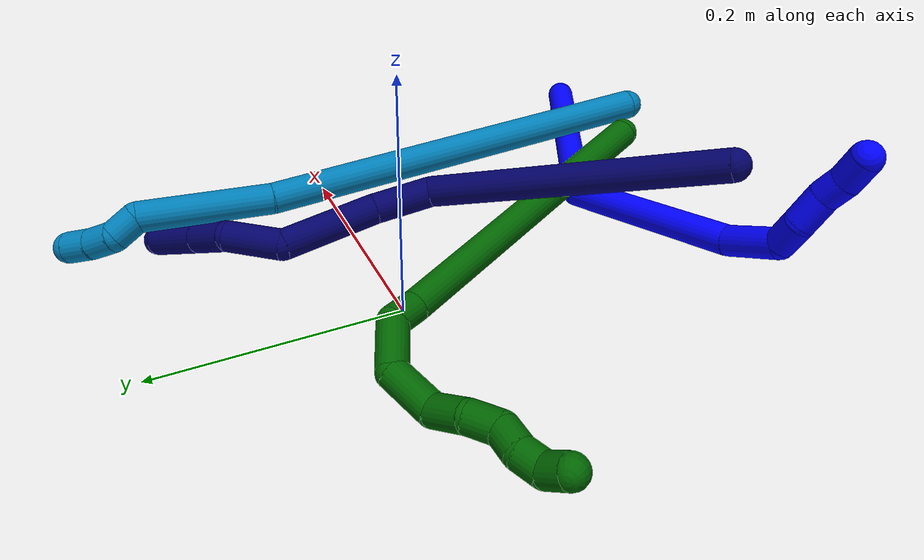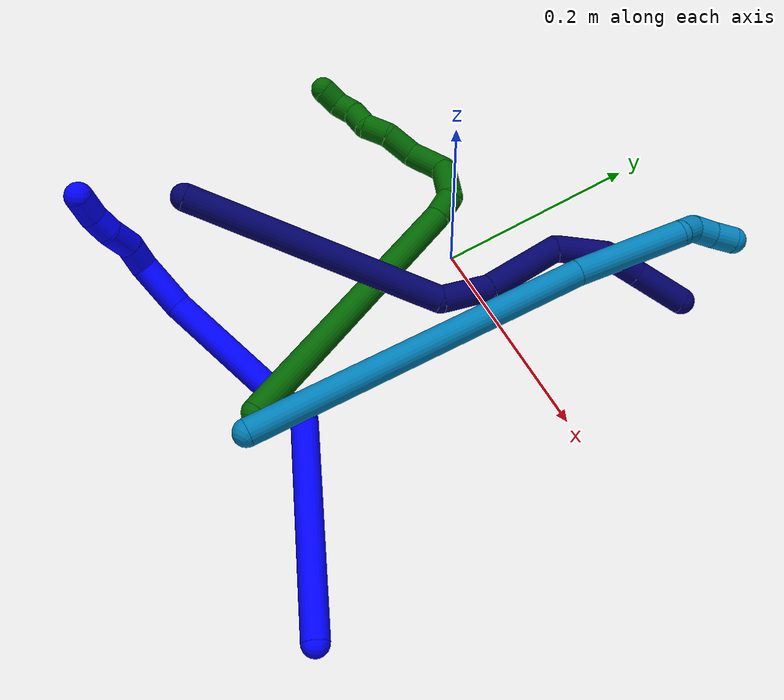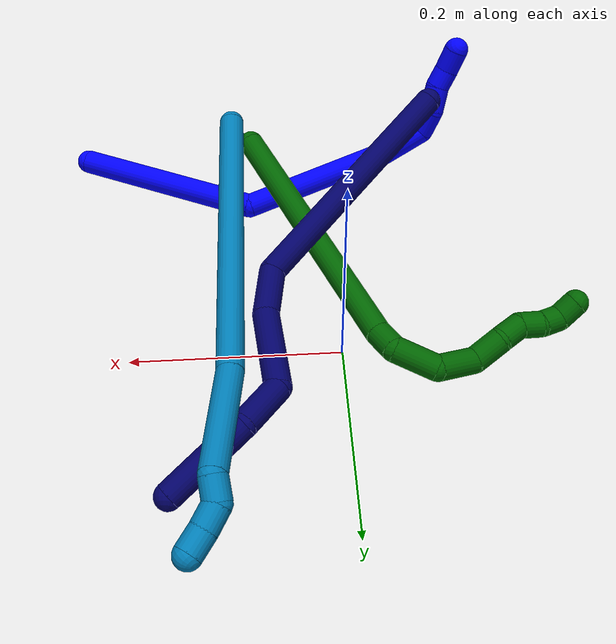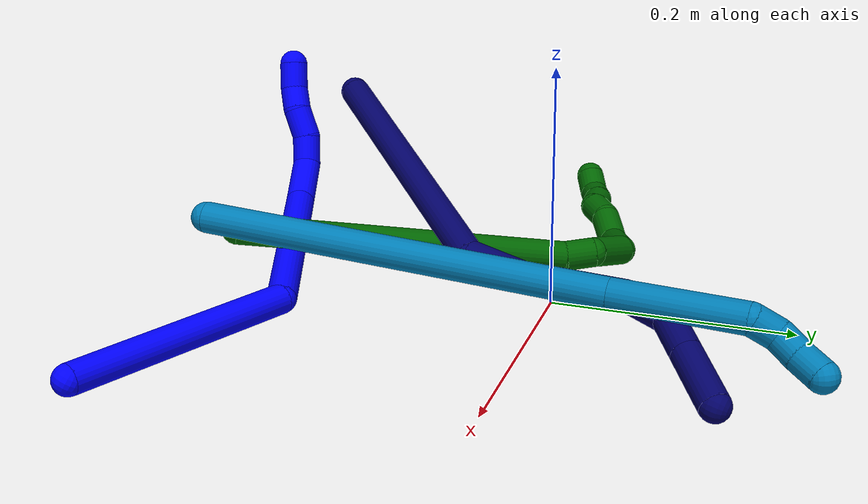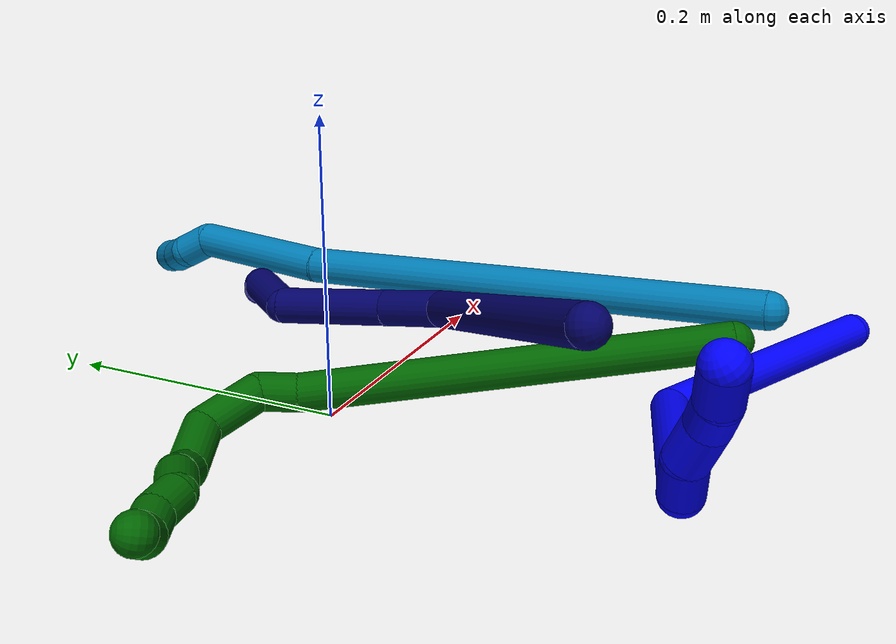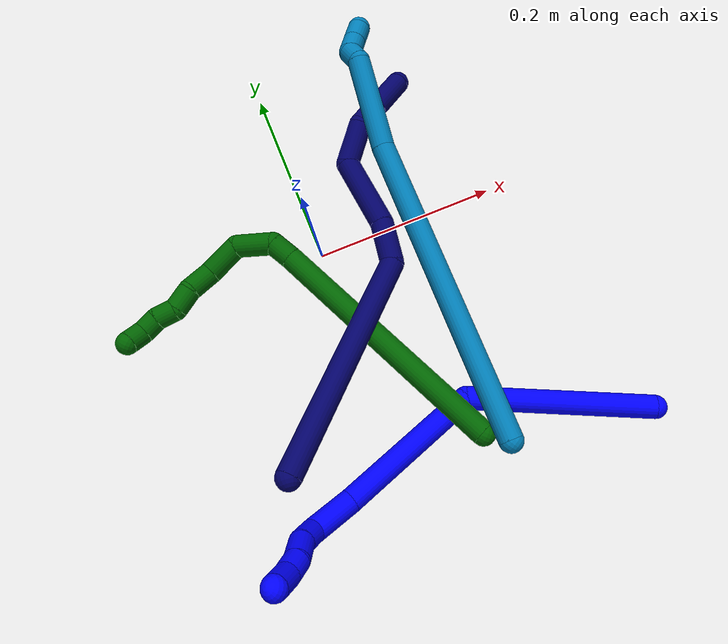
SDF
<sdf version="1.7">
 <world name="default">
  <model name="photoneo_s_sensor">
   <static>1</static>
   <pose>0 0 2 1.57079 1.57079 3.14159</pose>
   <link name="link">
    <inertial><mass>0.1</mass></inertial>
    <sensor name="sensor" type="depth">
     <update_rate>30</update_rate>
     <camera>
      <horizontal_fov>1.22</horizontal_fov>
      <image><width>1920</width><height>1200</height><format>B8G8R8</format></image>
      <clip><near>0.1</near><far>4</far></clip>
      <depth_camera><output>points</output></depth_camera>
     </camera>
     <plugin name="camera_plugin" filename="libgazebo_ros_depth_camera.so">
      <baseline>0.2</baseline>
      <alwaysOn>1</alwaysOn>
      <updateRate>0.0</updateRate>
      <cameraName>camera_ir</cameraName>
      <imageTopicName>/camera/color/image_raw</imageTopicName>
      <cameraInfoTopicName>/camera/color/camera_info</cameraInfoTopicName>
      <depthImageTopicName>/camera/depth/image_raw</depthImageTopicName>
      <depthImageCameraInfoTopicName>/camera/depth/camera_info</depthImageCameraInfoTopicName>
      <pointCloudTopicName>/camera/depth/points</pointCloudTopicName>
      <frameName>fr_optical</frameName>
      <pointCloudCutoff>0.1</pointCloudCutoff>
      <pointCloudCutoffMax>2.0</pointCloudCutoffMax>
      <distortionK1>0</distortionK1>
      <distortionK2>0</distortionK2>
      <distortionK3>0</distortionK3>
      <distortionT1>0</distortionT1>
      <distortionT2>0</distortionT2>
      <CxPrime>0</CxPrime>
      <Cx>0</Cx>
      <Cy>0</Cy>
      <focalLength>0</focalLength>
      <hackBaseline>0</hackBaseline>
     </plugin>
    </sensor>
   </link>
  </model>
  <model name="bin">
   <static>1</static>
   <link name="bottom">
    <collision name="collision-bottom">
     <pose>0 0 -0.01 0 -0 0</pose>
     <geometry><box><size>0.8 0.6 0.02</size></box></geometry>
     <surface>
      <friction><ode><mu>100</mu><mu2>100</mu2></ode></friction>
      <contact><collide_bitmask>65535</collide_bitmask></contact>
     </surface>
    </collision>
   </link>
   <link name="west_wall">
    <collision name="collision-west_wall">
     <pose>-0.41 0 0.1 0 -0 0</pose>
     <geometry><box><size>0.02 0.6 0.2</size></box></geometry>
     <surface>
      <friction><ode><mu>100</mu><mu2>100</mu2></ode></friction>
      <contact><collide_bitmask>65535</collide_bitmask></contact>
     </surface>
    </collision>
   </link>
   <link name="east_wall">
    <collision name="collision-east_wall">
     <pose>0.41 0 0.1 0 -0 0</pose>
     <geometry><box><size>0.02 0.6 0.2</size></box></geometry>
     <surface>
      <friction><ode><mu>100</mu><mu2>100</mu2></ode></friction>
      <contact><collide_bitmask>65535</collide_bitmask></contact>
     </surface>
    </collision>
   </link>
   <link name="south_wall">
    <collision name="collision-south_wall">
     <pose>0 -0.31 0.1 0 -0 0</pose>
     <geometry><box><size>0.8 0.02 0.2</size></box></geometry>
     <surface>
      <friction><ode><mu>100</mu><mu2>100</mu2></ode></friction>
      <contact><collide_bitmask>65535</collide_bitmask></contact>
     </surface>
    </collision>
   </link>
   <link name="north_wall">
    <collision name="collision-north_wall">
     <pose>0 0.31 0.1 0 -0 0</pose>
     <geometry><box><size>0.8 0.02 0.2</size></box></geometry>
     <surface>
      <friction><ode><mu>100</mu><mu2>100</mu2></ode></friction>
      <contact><collide_bitmask>65535</collide_bitmask></contact>
     </surface>
    </collision>
   </link>
  </model>
  <model name="1">
   <static>0</static>
   <link name="1">
    <collision name="collision-cylinder-e_1_1_4">
     <pose>-0.064072 -0.057034 -0.048893 2.27949 -0.706175 -1.35112</pose>
     <geometry><cylinder><radius>0.0125</radius><length>0.197469</length></cylinder></geometry>
     <surface>
      <friction><ode><mu>1.16</mu><mu2>1.16</mu2><slip1>0</slip1><slip2>0</slip2></ode></friction>
      <contact><ode><kp>1e+06</kp><kd>1</kd><max_vel>0</max_vel><min_depth>0.001</min_depth></ode></contact>
     </surface>
    </collision>
    <visual name="visual-cylinder-e_1_1_4">
     <pose>-0.064072 -0.057034 -0.048893 2.27949 -0.706175 -1.35112</pose>
     <geometry><cylinder><radius>0.0125</radius><length>0.197469</length></cylinder></geometry>
     <material><ambient>0 0 1 1</ambient></material>
    </visual>
    <collision name="collision-cylinder-e_2_4_5">
     <pose>-0.201116 -0.10507 -0.126527 -2.83821 -1.17938 2.69237</pose>
     <geometry><cylinder><radius>0.0125</radius><length>0.157886</length></cylinder></geometry>
     <surface>
      <friction><ode><mu>1.16</mu><mu2>1.16</mu2><slip1>0</slip1><slip2>0</slip2></ode></friction>
      <contact><ode><kp>1e+06</kp><kd>1</kd><max_vel>0</max_vel><min_depth>0.001</min_depth></ode></contact>
     </surface>
    </collision>
    <visual name="visual-cylinder-e_2_4_5">
     <pose>-0.201116 -0.10507 -0.126527 -2.83821 -1.17938 2.69237</pose>
     <geometry><cylinder><radius>0.0125</radius><length>0.157886</length></cylinder></geometry>
     <material><ambient>0 0 1 1</ambient></material>
    </visual>
    <collision name="collision-cylinder-e_3_5_6">
     <pose>-0.292778 -0.091359 -0.169377 -2.81919 -0.898559 2.49104</pose>
     <geometry><cylinder><radius>0.0125</radius><length>0.047774</length></cylinder></geometry>
     <surface>
      <friction><ode><mu>1.16</mu><mu2>1.16</mu2><slip1>0</slip1><slip2>0</slip2></ode></friction>
      <contact><ode><kp>1e+06</kp><kd>1</kd><max_vel>0</max_vel><min_depth>0.001</min_depth></ode></contact>
     </surface>
    </collision>
    <visual name="visual-cylinder-e_3_5_6">
     <pose>-0.292778 -0.091359 -0.169377 -2.81919 -0.898559 2.49104</pose>
     <geometry><cylinder><radius>0.0125</radius><length>0.047774</length></cylinder></geometry>
     <material><ambient>0 0 1 1</ambient></material>
    </visual>
    <collision name="collision-cylinder-e_4_6_7">
     <pose>-0.314172 -0.080437 -0.194652 -2.63411 -0.208548 0.76713</pose>
     <geometry><cylinder><radius>0.0125</radius><length>0.026118</length></cylinder></geometry>
     <surface>
      <friction><ode><mu>1.16</mu><mu2>1.16</mu2><slip1>0</slip1><slip2>0</slip2></ode></friction>
      <contact><ode><kp>1e+06</kp><kd>1</kd><max_vel>0</max_vel><min_depth>0.001</min_depth></ode></contact>
     </surface>
    </collision>
    <visual name="visual-cylinder-e_4_6_7">
     <pose>-0.314172 -0.080437 -0.194652 -2.63411 -0.208548 0.76713</pose>
     <geometry><cylinder><radius>0.0125</radius><length>0.026118</length></cylinder></geometry>
     <material><ambient>0 0 1 1</ambient></material>
    </visual>
    <collision name="collision-cylinder-e_5_7_8">
     <pose>-0.319135 -0.064406 -0.214731 -2.30774 -0.168702 0.377279</pose>
     <geometry><cylinder><radius>0.0125</radius><length>0.026908</length></cylinder></geometry>
     <surface>
      <friction><ode><mu>1.16</mu><mu2>1.16</mu2><slip1>0</slip1><slip2>0</slip2></ode></friction>
      <contact><ode><kp>1e+06</kp><kd>1</kd><max_vel>0</max_vel><min_depth>0.001</min_depth></ode></contact>
     </surface>
    </collision>
    <visual name="visual-cylinder-e_5_7_8">
     <pose>-0.319135 -0.064406 -0.214731 -2.30774 -0.168702 0.377279</pose>
     <geometry><cylinder><radius>0.0125</radius><length>0.026908</length></cylinder></geometry>
     <material><ambient>0 0 1 1</ambient></material>
    </visual>
    <collision name="collision-cylinder-e_6_8_9">
     <pose>-0.325061 -0.048916 -0.231051 -2.48828 -0.37465 1.02019</pose>
     <geometry><cylinder><radius>0.0125</radius><length>0.020045</length></cylinder></geometry>
     <surface>
      <friction><ode><mu>1.16</mu><mu2>1.16</mu2><slip1>0</slip1><slip2>0</slip2></ode></friction>
      <contact><ode><kp>1e+06</kp><kd>1</kd><max_vel>0</max_vel><min_depth>0.001</min_depth></ode></contact>
     </surface>
    </collision>
    <visual name="visual-cylinder-e_6_8_9">
     <pose>-0.325061 -0.048916 -0.231051 -2.48828 -0.37465 1.02019</pose>
     <geometry><cylinder><radius>0.0125</radius><length>0.020045</length></cylinder></geometry>
     <material><ambient>0 0 1 1</ambient></material>
    </visual>
    <collision name="collision-cylinder-e_7_9_2">
     <pose>-0.330977 -0.037385 -0.248567 -2.61618 -0.19006 0.681247</pose>
     <geometry><cylinder><radius>0.0125</radius><length>0.0238</length></cylinder></geometry>
     <surface>
      <friction><ode><mu>1.16</mu><mu2>1.16</mu2><slip1>0</slip1><slip2>0</slip2></ode></friction>
      <contact><ode><kp>1e+06</kp><kd>1</kd><max_vel>0</max_vel><min_depth>0.001</min_depth></ode></contact>
     </surface>
    </collision>
    <visual name="visual-cylinder-e_7_9_2">
     <pose>-0.330977 -0.037385 -0.248567 -2.61618 -0.19006 0.681247</pose>
     <geometry><cylinder><radius>0.0125</radius><length>0.0238</length></cylinder></geometry>
     <material><ambient>0 0 1 1</ambient></material>
    </visual>
    <collision name="collision-sphere-2">
     <pose>-0.333225 -0.031524 -0.258676 0 -0 0</pose>
     <geometry><sphere><radius>0.0125</radius></sphere></geometry>
     <surface>
      <friction><ode><mu>1.16</mu><mu2>1.16</mu2><slip1>0</slip1><slip2>0</slip2></ode></friction>
      <contact><ode><kp>1e+06</kp><kd>1</kd><max_vel>0</max_vel><min_depth>0.001</min_depth></ode></contact>
     </surface>
    </collision>
    <visual name="visual-sphere-2">
     <pose>-0.333225 -0.031524 -0.258676 0 -0 0</pose>
     <geometry><sphere><radius>0.0125</radius></sphere></geometry>
     <material><ambient>0 0 1 1</ambient></material>
    </visual>
    <collision name="collision-sphere-9">
     <pose>-0.328729 -0.043246 -0.238457 0 -0 0</pose>
     <geometry><sphere><radius>0.0125</radius></sphere></geometry>
     <surface>
      <friction><ode><mu>1.16</mu><mu2>1.16</mu2><slip1>0</slip1><slip2>0</slip2></ode></friction>
      <contact><ode><kp>1e+06</kp><kd>1</kd><max_vel>0</max_vel><min_depth>0.001</min_depth></ode></contact>
     </surface>
    </collision>
    <visual name="visual-sphere-9">
     <pose>-0.328729 -0.043246 -0.238457 0 -0 0</pose>
     <geometry><sphere><radius>0.0125</radius></sphere></geometry>
     <material><ambient>0 0 1 1</ambient></material>
    </visual>
    <collision name="collision-sphere-4">
     <pose>-0.128143 -0.114067 -0.097786 0 -0 0</pose>
     <geometry><sphere><radius>0.0125</radius></sphere></geometry>
     <surface>
      <friction><ode><mu>1.16</mu><mu2>1.16</mu2><slip1>0</slip1><slip2>0</slip2></ode></friction>
      <contact><ode><kp>1e+06</kp><kd>1</kd><max_vel>0</max_vel><min_depth>0.001</min_depth></ode></contact>
     </surface>
    </collision>
    <visual name="visual-sphere-4">
     <pose>-0.128143 -0.114067 -0.097786 0 -0 0</pose>
     <geometry><sphere><radius>0.0125</radius></sphere></geometry>
     <material><ambient>0 0 1 1</ambient></material>
    </visual>
    <collision name="collision-sphere-1">
     <geometry><sphere><radius>0.0125</radius></sphere></geometry>
     <surface>
      <friction><ode><mu>1.16</mu><mu2>1.16</mu2><slip1>0</slip1><slip2>0</slip2></ode></friction>
      <contact><ode><kp>1e+06</kp><kd>1</kd><max_vel>0</max_vel><min_depth>0.001</min_depth></ode></contact>
     </surface>
    </collision>
    <visual name="visual-sphere-1">
     <geometry><sphere><radius>0.0125</radius></sphere></geometry>
     <material><ambient>0 0 1 1</ambient></material>
    </visual>
    <collision name="collision-sphere-8">
     <pose>-0.321394 -0.054585 -0.223644 0 -0 0</pose>
     <geometry><sphere><radius>0.0125</radius></sphere></geometry>
     <surface>
      <friction><ode><mu>1.16</mu><mu2>1.16</mu2><slip1>0</slip1><slip2>0</slip2></ode></friction>
      <contact><ode><kp>1e+06</kp><kd>1</kd><max_vel>0</max_vel><min_depth>0.001</min_depth></ode></contact>
     </surface>
    </collision>
    <visual name="visual-sphere-8">
     <pose>-0.321394 -0.054585 -0.223644 0 -0 0</pose>
     <geometry><sphere><radius>0.0125</radius></sphere></geometry>
     <material><ambient>0 0 1 1</ambient></material>
    </visual>
    <collision name="collision-sphere-5">
     <pose>-0.274088 -0.096072 -0.155268 0 -0 0</pose>
     <geometry><sphere><radius>0.0125</radius></sphere></geometry>
     <surface>
      <friction><ode><mu>1.16</mu><mu2>1.16</mu2><slip1>0</slip1><slip2>0</slip2></ode></friction>
      <contact><ode><kp>1e+06</kp><kd>1</kd><max_vel>0</max_vel><min_depth>0.001</min_depth></ode></contact>
     </surface>
    </collision>
    <visual name="visual-sphere-5">
     <pose>-0.274088 -0.096072 -0.155268 0 -0 0</pose>
     <geometry><sphere><radius>0.0125</radius></sphere></geometry>
     <material><ambient>0 0 1 1</ambient></material>
    </visual>
    <collision name="collision-sphere-6">
     <pose>-0.311468 -0.086646 -0.183486 0 -0 0</pose>
     <geometry><sphere><radius>0.0125</radius></sphere></geometry>
     <surface>
      <friction><ode><mu>1.16</mu><mu2>1.16</mu2><slip1>0</slip1><slip2>0</slip2></ode></friction>
      <contact><ode><kp>1e+06</kp><kd>1</kd><max_vel>0</max_vel><min_depth>0.001</min_depth></ode></contact>
     </surface>
    </collision>
    <visual name="visual-sphere-6">
     <pose>-0.311468 -0.086646 -0.183486 0 -0 0</pose>
     <geometry><sphere><radius>0.0125</radius></sphere></geometry>
     <material><ambient>0 0 1 1</ambient></material>
    </visual>
    <collision name="collision-sphere-7">
     <pose>-0.316876 -0.074228 -0.205818 0 -0 0</pose>
     <geometry><sphere><radius>0.0125</radius></sphere></geometry>
     <surface>
      <friction><ode><mu>1.16</mu><mu2>1.16</mu2><slip1>0</slip1><slip2>0</slip2></ode></friction>
      <contact><ode><kp>1e+06</kp><kd>1</kd><max_vel>0</max_vel><min_depth>0.001</min_depth></ode></contact>
     </surface>
    </collision>
    <visual name="visual-sphere-7">
     <pose>-0.316876 -0.074228 -0.205818 0 -0 0</pose>
     <geometry><sphere><radius>0.0125</radius></sphere></geometry>
     <material><ambient>0 0 1 1</ambient></material>
    </visual>
    <inertial>
     <pose>-0.179157 -0.07584 -0.118265 0 -0 0</pose>
     <mass>0.5</mass>
     <inertia>
      <ixx>-0.00045</ixx>
      <ixy>0</ixy>
      <ixz>0</ixz>
      <iyy>0.000133</iyy>
      <iyz>0</iyz>
      <izz>0.00105</izz>
     </inertia>
    </inertial>
   </link>
   <pose>0.261727 -0.288501 0.01365 2.60643 -0.216207 0.406193</pose>
  </model>
  <model name="6">
   <static>0</static>
   <link name="6">
    <collision name="collision-cylinder-e_1_1_4">
     <pose>-0.069962 -0.012108 -0.116213 3.03778 -0.539516 -2.77012</pose>
     <geometry><cylinder><radius>0.0125</radius><length>0.272372</length></cylinder></geometry>
     <surface>
      <friction><ode><mu>1.16</mu><mu2>1.16</mu2><slip1>0</slip1><slip2>0</slip2></ode></friction>
      <contact><ode><kp>1e+06</kp><kd>1</kd><max_vel>0</max_vel><min_depth>0.001</min_depth></ode></contact>
     </surface>
    </collision>
    <visual name="visual-cylinder-e_1_1_4">
     <pose>-0.069962 -0.012108 -0.116213 3.03778 -0.539516 -2.77012</pose>
     <geometry><cylinder><radius>0.0125</radius><length>0.272372</length></cylinder></geometry>
     <material><ambient>0 0.392157 0.003922 1</ambient></material>
    </visual>
    <collision name="collision-cylinder-e_2_4_5">
     <pose>-0.14397 -0.02584 -0.244241 3.00501 -0.327096 -2.35572</pose>
     <geometry><cylinder><radius>0.0125</radius><length>0.025189</length></cylinder></geometry>
     <surface>
      <friction><ode><mu>1.16</mu><mu2>1.16</mu2><slip1>0</slip1><slip2>0</slip2></ode></friction>
      <contact><ode><kp>1e+06</kp><kd>1</kd><max_vel>0</max_vel><min_depth>0.001</min_depth></ode></contact>
     </surface>
    </collision>
    <visual name="visual-cylinder-e_2_4_5">
     <pose>-0.14397 -0.02584 -0.244241 3.00501 -0.327096 -2.35572</pose>
     <geometry><cylinder><radius>0.0125</radius><length>0.025189</length></cylinder></geometry>
     <material><ambient>0 0.392157 0.003922 1</ambient></material>
    </visual>
    <collision name="collision-cylinder-e_3_5_6">
     <pose>-0.152593 -0.015163 -0.272924 -2.51146 -0.215797 0.64172</pose>
     <geometry><cylinder><radius>0.0125</radius><length>0.042745</length></cylinder></geometry>
     <surface>
      <friction><ode><mu>1.16</mu><mu2>1.16</mu2><slip1>0</slip1><slip2>0</slip2></ode></friction>
      <contact><ode><kp>1e+06</kp><kd>1</kd><max_vel>0</max_vel><min_depth>0.001</min_depth></ode></contact>
     </surface>
    </collision>
    <visual name="visual-cylinder-e_3_5_6">
     <pose>-0.152593 -0.015163 -0.272924 -2.51146 -0.215797 0.64172</pose>
     <geometry><cylinder><radius>0.0125</radius><length>0.042745</length></cylinder></geometry>
     <material><ambient>0 0.392157 0.003922 1</ambient></material>
    </visual>
    <collision name="collision-cylinder-e_4_6_7">
     <pose>-0.152512 0.015851 -0.296437 -1.91206 0.230347 -0.324816</pose>
     <geometry><cylinder><radius>0.0125</radius><length>0.040792</length></cylinder></geometry>
     <surface>
      <friction><ode><mu>1.16</mu><mu2>1.16</mu2><slip1>0</slip1><slip2>0</slip2></ode></friction>
      <contact><ode><kp>1e+06</kp><kd>1</kd><max_vel>0</max_vel><min_depth>0.001</min_depth></ode></contact>
     </surface>
    </collision>
    <visual name="visual-cylinder-e_4_6_7">
     <pose>-0.152512 0.015851 -0.296437 -1.91206 0.230347 -0.324816</pose>
     <geometry><cylinder><radius>0.0125</radius><length>0.040792</length></cylinder></geometry>
     <material><ambient>0 0.392157 0.003922 1</ambient></material>
    </visual>
    <collision name="collision-cylinder-e_5_7_8">
     <pose>-0.13648 0.043522 -0.309028 -2.15669 0.813609 -1.35313</pose>
     <geometry><cylinder><radius>0.0125</radius><length>0.031305</length></cylinder></geometry>
     <surface>
      <friction><ode><mu>1.16</mu><mu2>1.16</mu2><slip1>0</slip1><slip2>0</slip2></ode></friction>
      <contact><ode><kp>1e+06</kp><kd>1</kd><max_vel>0</max_vel><min_depth>0.001</min_depth></ode></contact>
     </surface>
    </collision>
    <visual name="visual-cylinder-e_5_7_8">
     <pose>-0.13648 0.043522 -0.309028 -2.15669 0.813609 -1.35313</pose>
     <geometry><cylinder><radius>0.0125</radius><length>0.031305</length></cylinder></geometry>
     <material><ambient>0 0.392157 0.003922 1</ambient></material>
    </visual>
    <collision name="collision-cylinder-e_6_8_9">
     <pose>-0.118161 0.0626 -0.31705 -1.7732 0.591706 -0.715256</pose>
     <geometry><cylinder><radius>0.0125</radius><length>0.024893</length></cylinder></geometry>
     <surface>
      <friction><ode><mu>1.16</mu><mu2>1.16</mu2><slip1>0</slip1><slip2>0</slip2></ode></friction>
      <contact><ode><kp>1e+06</kp><kd>1</kd><max_vel>0</max_vel><min_depth>0.001</min_depth></ode></contact>
     </surface>
    </collision>
    <visual name="visual-cylinder-e_6_8_9">
     <pose>-0.118161 0.0626 -0.31705 -1.7732 0.591706 -0.715256</pose>
     <geometry><cylinder><radius>0.0125</radius><length>0.024893</length></cylinder></geometry>
     <material><ambient>0 0.392157 0.003922 1</ambient></material>
    </visual>
    <collision name="collision-cylinder-e_7_9_10">
     <pose>-0.108898 0.080807 -0.325752 -2.2572 0.218394 -0.455088</pose>
     <geometry><cylinder><radius>0.0125</radius><length>0.021418</length></cylinder></geometry>
     <surface>
      <friction><ode><mu>1.16</mu><mu2>1.16</mu2><slip1>0</slip1><slip2>0</slip2></ode></friction>
      <contact><ode><kp>1e+06</kp><kd>1</kd><max_vel>0</max_vel><min_depth>0.001</min_depth></ode></contact>
     </surface>
    </collision>
    <visual name="visual-cylinder-e_7_9_10">
     <pose>-0.108898 0.080807 -0.325752 -2.2572 0.218394 -0.455088</pose>
     <geometry><cylinder><radius>0.0125</radius><length>0.021418</length></cylinder></geometry>
     <material><ambient>0 0.392157 0.003922 1</ambient></material>
    </visual>
    <collision name="collision-cylinder-e_8_10_11">
     <pose>-0.102806 0.09761 -0.335894 -1.95417 0.381671 -0.557544</pose>
     <geometry><cylinder><radius>0.0125</radius><length>0.020255</length></cylinder></geometry>
     <surface>
      <friction><ode><mu>1.16</mu><mu2>1.16</mu2><slip1>0</slip1><slip2>0</slip2></ode></friction>
      <contact><ode><kp>1e+06</kp><kd>1</kd><max_vel>0</max_vel><min_depth>0.001</min_depth></ode></contact>
     </surface>
    </collision>
    <visual name="visual-cylinder-e_8_10_11">
     <pose>-0.102806 0.09761 -0.335894 -1.95417 0.381671 -0.557544</pose>
     <geometry><cylinder><radius>0.0125</radius><length>0.020255</length></cylinder></geometry>
     <material><ambient>0 0.392157 0.003922 1</ambient></material>
    </visual>
    <collision name="collision-cylinder-e_9_11_2">
     <pose>-0.090524 0.110741 -0.343729 -2.34534 0.943036 -1.76213</pose>
     <geometry><cylinder><radius>0.0125</radius><length>0.02103</length></cylinder></geometry>
     <surface>
      <friction><ode><mu>1.16</mu><mu2>1.16</mu2><slip1>0</slip1><slip2>0</slip2></ode></friction>
      <contact><ode><kp>1e+06</kp><kd>1</kd><max_vel>0</max_vel><min_depth>0.001</min_depth></ode></contact>
     </surface>
    </collision>
    <visual name="visual-cylinder-e_9_11_2">
     <pose>-0.090524 0.110741 -0.343729 -2.34534 0.943036 -1.76213</pose>
     <geometry><cylinder><radius>0.0125</radius><length>0.02103</length></cylinder></geometry>
     <material><ambient>0 0.392157 0.003922 1</ambient></material>
    </visual>
    <collision name="collision-sphere-2">
     <pose>-0.082014 0.115155 -0.348048 0 -0 0</pose>
     <geometry><sphere><radius>0.0125</radius></sphere></geometry>
     <surface>
      <friction><ode><mu>1.16</mu><mu2>1.16</mu2><slip1>0</slip1><slip2>0</slip2></ode></friction>
      <contact><ode><kp>1e+06</kp><kd>1</kd><max_vel>0</max_vel><min_depth>0.001</min_depth></ode></contact>
     </surface>
    </collision>
    <visual name="visual-sphere-2">
     <pose>-0.082014 0.115155 -0.348048 0 -0 0</pose>
     <geometry><sphere><radius>0.0125</radius></sphere></geometry>
     <material><ambient>0 0.392157 0.003922 1</ambient></material>
    </visual>
    <collision name="collision-sphere-11">
     <pose>-0.099034 0.106327 -0.339409 0 -0 0</pose>
     <geometry><sphere><radius>0.0125</radius></sphere></geometry>
     <surface>
      <friction><ode><mu>1.16</mu><mu2>1.16</mu2><slip1>0</slip1><slip2>0</slip2></ode></friction>
      <contact><ode><kp>1e+06</kp><kd>1</kd><max_vel>0</max_vel><min_depth>0.001</min_depth></ode></contact>
     </surface>
    </collision>
    <visual name="visual-sphere-11">
     <pose>-0.099034 0.106327 -0.339409 0 -0 0</pose>
     <geometry><sphere><radius>0.0125</radius></sphere></geometry>
     <material><ambient>0 0.392157 0.003922 1</ambient></material>
    </visual>
    <collision name="collision-sphere-10">
     <pose>-0.106578 0.088894 -0.332378 0 -0 0</pose>
     <geometry><sphere><radius>0.0125</radius></sphere></geometry>
     <surface>
      <friction><ode><mu>1.16</mu><mu2>1.16</mu2><slip1>0</slip1><slip2>0</slip2></ode></friction>
      <contact><ode><kp>1e+06</kp><kd>1</kd><max_vel>0</max_vel><min_depth>0.001</min_depth></ode></contact>
     </surface>
    </collision>
    <visual name="visual-sphere-10">
     <pose>-0.106578 0.088894 -0.332378 0 -0 0</pose>
     <geometry><sphere><radius>0.0125</radius></sphere></geometry>
     <material><ambient>0 0.392157 0.003922 1</ambient></material>
    </visual>
    <collision name="collision-sphere-9">
     <pose>-0.111219 0.07272 -0.319126 0 -0 0</pose>
     <geometry><sphere><radius>0.0125</radius></sphere></geometry>
     <surface>
      <friction><ode><mu>1.16</mu><mu2>1.16</mu2><slip1>0</slip1><slip2>0</slip2></ode></friction>
      <contact><ode><kp>1e+06</kp><kd>1</kd><max_vel>0</max_vel><min_depth>0.001</min_depth></ode></contact>
     </surface>
    </collision>
    <visual name="visual-sphere-9">
     <pose>-0.111219 0.07272 -0.319126 0 -0 0</pose>
     <geometry><sphere><radius>0.0125</radius></sphere></geometry>
     <material><ambient>0 0.392157 0.003922 1</ambient></material>
    </visual>
    <collision name="collision-sphere-4">
     <pose>-0.139923 -0.024216 -0.232426 0 -0 0</pose>
     <geometry><sphere><radius>0.0125</radius></sphere></geometry>
     <surface>
      <friction><ode><mu>1.16</mu><mu2>1.16</mu2><slip1>0</slip1><slip2>0</slip2></ode></friction>
      <contact><ode><kp>1e+06</kp><kd>1</kd><max_vel>0</max_vel><min_depth>0.001</min_depth></ode></contact>
     </surface>
    </collision>
    <visual name="visual-sphere-4">
     <pose>-0.139923 -0.024216 -0.232426 0 -0 0</pose>
     <geometry><sphere><radius>0.0125</radius></sphere></geometry>
     <material><ambient>0 0.392157 0.003922 1</ambient></material>
    </visual>
    <collision name="collision-sphere-1">
     <geometry><sphere><radius>0.0125</radius></sphere></geometry>
     <surface>
      <friction><ode><mu>1.16</mu><mu2>1.16</mu2><slip1>0</slip1><slip2>0</slip2></ode></friction>
      <contact><ode><kp>1e+06</kp><kd>1</kd><max_vel>0</max_vel><min_depth>0.001</min_depth></ode></contact>
     </surface>
    </collision>
    <visual name="visual-sphere-1">
     <geometry><sphere><radius>0.0125</radius></sphere></geometry>
     <material><ambient>0 0.392157 0.003922 1</ambient></material>
    </visual>
    <collision name="collision-sphere-8">
     <pose>-0.125104 0.05248 -0.314973 0 -0 0</pose>
     <geometry><sphere><radius>0.0125</radius></sphere></geometry>
     <surface>
      <friction><ode><mu>1.16</mu><mu2>1.16</mu2><slip1>0</slip1><slip2>0</slip2></ode></friction>
      <contact><ode><kp>1e+06</kp><kd>1</kd><max_vel>0</max_vel><min_depth>0.001</min_depth></ode></contact>
     </surface>
    </collision>
    <visual name="visual-sphere-8">
     <pose>-0.125104 0.05248 -0.314973 0 -0 0</pose>
     <geometry><sphere><radius>0.0125</radius></sphere></geometry>
     <material><ambient>0 0.392157 0.003922 1</ambient></material>
    </visual>
    <collision name="collision-sphere-5">
     <pose>-0.148016 -0.027464 -0.256057 0 -0 0</pose>
     <geometry><sphere><radius>0.0125</radius></sphere></geometry>
     <surface>
      <friction><ode><mu>1.16</mu><mu2>1.16</mu2><slip1>0</slip1><slip2>0</slip2></ode></friction>
      <contact><ode><kp>1e+06</kp><kd>1</kd><max_vel>0</max_vel><min_depth>0.001</min_depth></ode></contact>
     </surface>
    </collision>
    <visual name="visual-sphere-5">
     <pose>-0.148016 -0.027464 -0.256057 0 -0 0</pose>
     <geometry><sphere><radius>0.0125</radius></sphere></geometry>
     <material><ambient>0 0.392157 0.003922 1</ambient></material>
    </visual>
    <collision name="collision-sphere-6">
     <pose>-0.157169 -0.002861 -0.289792 0 -0 0</pose>
     <geometry><sphere><radius>0.0125</radius></sphere></geometry>
     <surface>
      <friction><ode><mu>1.16</mu><mu2>1.16</mu2><slip1>0</slip1><slip2>0</slip2></ode></friction>
      <contact><ode><kp>1e+06</kp><kd>1</kd><max_vel>0</max_vel><min_depth>0.001</min_depth></ode></contact>
     </surface>
    </collision>
    <visual name="visual-sphere-6">
     <pose>-0.157169 -0.002861 -0.289792 0 -0 0</pose>
     <geometry><sphere><radius>0.0125</radius></sphere></geometry>
     <material><ambient>0 0.392157 0.003922 1</ambient></material>
    </visual>
    <collision name="collision-sphere-7">
     <pose>-0.147856 0.034563 -0.303083 0 -0 0</pose>
     <geometry><sphere><radius>0.0125</radius></sphere></geometry>
     <surface>
      <friction><ode><mu>1.16</mu><mu2>1.16</mu2><slip1>0</slip1><slip2>0</slip2></ode></friction>
      <contact><ode><kp>1e+06</kp><kd>1</kd><max_vel>0</max_vel><min_depth>0.001</min_depth></ode></contact>
     </surface>
    </collision>
    <visual name="visual-sphere-7">
     <pose>-0.147856 0.034563 -0.303083 0 -0 0</pose>
     <geometry><sphere><radius>0.0125</radius></sphere></geometry>
     <material><ambient>0 0.392157 0.003922 1</ambient></material>
    </visual>
    <inertial>
     <pose>-0.097917 0.010014 -0.200279 0 -0 0</pose>
     <mass>0.5</mass>
     <inertia>
      <ixx>-0.001878</ixx>
      <ixy>0</ixy>
      <ixz>0</ixz>
      <iyy>0.001077</iyy>
      <iyz>0</iyz>
      <izz>0.00097</izz>
     </inertia>
    </inertial>
   </link>
   <pose>0.078832 -0.242999 0.065885 -2.05324 -0.939204 -1.95236</pose>
  </model>
  <model name="7">
   <static>0</static>
   <link name="7">
    <collision name="collision-cylinder-e_1_1_4">
     <pose>0.002328 0.071728 -0.0959 -2.4994 0.019437 -0.058424</pose>
     <geometry><cylinder><radius>0.0125</radius><length>0.239559</length></cylinder></geometry>
     <surface>
      <friction><ode><mu>1.16</mu><mu2>1.16</mu2><slip1>0</slip1><slip2>0</slip2></ode></friction>
      <contact><ode><kp>1e+06</kp><kd>1</kd><max_vel>0</max_vel><min_depth>0.001</min_depth></ode></contact>
     </surface>
    </collision>
    <visual name="visual-cylinder-e_1_1_4">
     <pose>0.002328 0.071728 -0.0959 -2.4994 0.019437 -0.058424</pose>
     <geometry><cylinder><radius>0.0125</radius><length>0.239559</length></cylinder></geometry>
     <material><ambient>0.003922 0 0.403922 1</ambient></material>
    </visual>
    <collision name="collision-cylinder-e_2_4_5">
     <pose>0.003588 0.143906 -0.215784 -3.12286 -0.044494 2.34481</pose>
     <geometry><cylinder><radius>0.0125</radius><length>0.048026</length></cylinder></geometry>
     <surface>
      <friction><ode><mu>1.16</mu><mu2>1.16</mu2><slip1>0</slip1><slip2>0</slip2></ode></friction>
      <contact><ode><kp>1e+06</kp><kd>1</kd><max_vel>0</max_vel><min_depth>0.001</min_depth></ode></contact>
     </surface>
    </collision>
    <visual name="visual-cylinder-e_2_4_5">
     <pose>0.003588 0.143906 -0.215784 -3.12286 -0.044494 2.34481</pose>
     <geometry><cylinder><radius>0.0125</radius><length>0.048026</length></cylinder></geometry>
     <material><ambient>0.003922 0 0.403922 1</ambient></material>
    </visual>
    <collision name="collision-cylinder-e_3_5_6">
     <pose>-0.000728 0.134331 -0.278274 2.88692 -0.081451 -0.616265</pose>
     <geometry><cylinder><radius>0.0125</radius><length>0.07984</length></cylinder></geometry>
     <surface>
      <friction><ode><mu>1.16</mu><mu2>1.16</mu2><slip1>0</slip1><slip2>0</slip2></ode></friction>
      <contact><ode><kp>1e+06</kp><kd>1</kd><max_vel>0</max_vel><min_depth>0.001</min_depth></ode></contact>
     </surface>
    </collision>
    <visual name="visual-cylinder-e_3_5_6">
     <pose>-0.000728 0.134331 -0.278274 2.88692 -0.081451 -0.616265</pose>
     <geometry><cylinder><radius>0.0125</radius><length>0.07984</length></cylinder></geometry>
     <material><ambient>0.003922 0 0.403922 1</ambient></material>
    </visual>
    <collision name="collision-cylinder-e_4_6_7">
     <pose>-0.010783 0.135418 -0.336548 -2.62959 -0.291622 1.02259</pose>
     <geometry><cylinder><radius>0.0125</radius><length>0.047355</length></cylinder></geometry>
     <surface>
      <friction><ode><mu>1.16</mu><mu2>1.16</mu2><slip1>0</slip1><slip2>0</slip2></ode></friction>
      <contact><ode><kp>1e+06</kp><kd>1</kd><max_vel>0</max_vel><min_depth>0.001</min_depth></ode></contact>
     </surface>
    </collision>
    <visual name="visual-cylinder-e_4_6_7">
     <pose>-0.010783 0.135418 -0.336548 -2.62959 -0.291622 1.02259</pose>
     <geometry><cylinder><radius>0.0125</radius><length>0.047355</length></cylinder></geometry>
     <material><ambient>0.003922 0 0.403922 1</ambient></material>
    </visual>
    <collision name="collision-cylinder-e_5_7_8">
     <pose>-0.016056 0.15854 -0.36841 -2.35955 0.089821 -0.21717</pose>
     <geometry><cylinder><radius>0.0125</radius><length>0.034227</length></cylinder></geometry>
     <surface>
      <friction><ode><mu>1.16</mu><mu2>1.16</mu2><slip1>0</slip1><slip2>0</slip2></ode></friction>
      <contact><ode><kp>1e+06</kp><kd>1</kd><max_vel>0</max_vel><min_depth>0.001</min_depth></ode></contact>
     </surface>
    </collision>
    <visual name="visual-cylinder-e_5_7_8">
     <pose>-0.016056 0.15854 -0.36841 -2.35955 0.089821 -0.21717</pose>
     <geometry><cylinder><radius>0.0125</radius><length>0.034227</length></cylinder></geometry>
     <material><ambient>0.003922 0 0.403922 1</ambient></material>
    </visual>
    <collision name="collision-cylinder-e_6_8_2">
     <pose>-0.012289 0.188495 -0.398478 -2.35708 0.087622 -0.21115</pose>
     <geometry><cylinder><radius>0.0125</radius><length>0.050993</length></cylinder></geometry>
     <surface>
      <friction><ode><mu>1.16</mu><mu2>1.16</mu2><slip1>0</slip1><slip2>0</slip2></ode></friction>
      <contact><ode><kp>1e+06</kp><kd>1</kd><max_vel>0</max_vel><min_depth>0.001</min_depth></ode></contact>
     </surface>
    </collision>
    <visual name="visual-cylinder-e_6_8_2">
     <pose>-0.012289 0.188495 -0.398478 -2.35708 0.087622 -0.21115</pose>
     <geometry><cylinder><radius>0.0125</radius><length>0.050993</length></cylinder></geometry>
     <material><ambient>0.003922 0 0.403922 1</ambient></material>
    </visual>
    <collision name="collision-sphere-2">
     <pose>-0.010058 0.206439 -0.416454 0 -0 0</pose>
     <geometry><sphere><radius>0.0125</radius></sphere></geometry>
     <surface>
      <friction><ode><mu>1.16</mu><mu2>1.16</mu2><slip1>0</slip1><slip2>0</slip2></ode></friction>
      <contact><ode><kp>1e+06</kp><kd>1</kd><max_vel>0</max_vel><min_depth>0.001</min_depth></ode></contact>
     </surface>
    </collision>
    <visual name="visual-sphere-2">
     <pose>-0.010058 0.206439 -0.416454 0 -0 0</pose>
     <geometry><sphere><radius>0.0125</radius></sphere></geometry>
     <material><ambient>0.003922 0 0.403922 1</ambient></material>
    </visual>
    <collision name="collision-sphere-4">
     <pose>0.004656 0.143456 -0.191799 0 -0 0</pose>
     <geometry><sphere><radius>0.0125</radius></sphere></geometry>
     <surface>
      <friction><ode><mu>1.16</mu><mu2>1.16</mu2><slip1>0</slip1><slip2>0</slip2></ode></friction>
      <contact><ode><kp>1e+06</kp><kd>1</kd><max_vel>0</max_vel><min_depth>0.001</min_depth></ode></contact>
     </surface>
    </collision>
    <visual name="visual-sphere-4">
     <pose>0.004656 0.143456 -0.191799 0 -0 0</pose>
     <geometry><sphere><radius>0.0125</radius></sphere></geometry>
     <material><ambient>0.003922 0 0.403922 1</ambient></material>
    </visual>
    <collision name="collision-sphere-1">
     <geometry><sphere><radius>0.0125</radius></sphere></geometry>
     <surface>
      <friction><ode><mu>1.16</mu><mu2>1.16</mu2><slip1>0</slip1><slip2>0</slip2></ode></friction>
      <contact><ode><kp>1e+06</kp><kd>1</kd><max_vel>0</max_vel><min_depth>0.001</min_depth></ode></contact>
     </surface>
    </collision>
    <visual name="visual-sphere-1">
     <geometry><sphere><radius>0.0125</radius></sphere></geometry>
     <material><ambient>0.003922 0 0.403922 1</ambient></material>
    </visual>
    <collision name="collision-sphere-8">
     <pose>-0.014521 0.170552 -0.380503 0 -0 0</pose>
     <geometry><sphere><radius>0.0125</radius></sphere></geometry>
     <surface>
      <friction><ode><mu>1.16</mu><mu2>1.16</mu2><slip1>0</slip1><slip2>0</slip2></ode></friction>
      <contact><ode><kp>1e+06</kp><kd>1</kd><max_vel>0</max_vel><min_depth>0.001</min_depth></ode></contact>
     </surface>
    </collision>
    <visual name="visual-sphere-8">
     <pose>-0.014521 0.170552 -0.380503 0 -0 0</pose>
     <geometry><sphere><radius>0.0125</radius></sphere></geometry>
     <material><ambient>0.003922 0 0.403922 1</ambient></material>
    </visual>
    <collision name="collision-sphere-5">
     <pose>0.00252 0.144355 -0.239769 0 -0 0</pose>
     <geometry><sphere><radius>0.0125</radius></sphere></geometry>
     <surface>
      <friction><ode><mu>1.16</mu><mu2>1.16</mu2><slip1>0</slip1><slip2>0</slip2></ode></friction>
      <contact><ode><kp>1e+06</kp><kd>1</kd><max_vel>0</max_vel><min_depth>0.001</min_depth></ode></contact>
     </surface>
    </collision>
    <visual name="visual-sphere-5">
     <pose>0.00252 0.144355 -0.239769 0 -0 0</pose>
     <geometry><sphere><radius>0.0125</radius></sphere></geometry>
     <material><ambient>0.003922 0 0.403922 1</ambient></material>
    </visual>
    <collision name="collision-sphere-6">
     <pose>-0.003976 0.124307 -0.316778 0 -0 0</pose>
     <geometry><sphere><radius>0.0125</radius></sphere></geometry>
     <surface>
      <friction><ode><mu>1.16</mu><mu2>1.16</mu2><slip1>0</slip1><slip2>0</slip2></ode></friction>
      <contact><ode><kp>1e+06</kp><kd>1</kd><max_vel>0</max_vel><min_depth>0.001</min_depth></ode></contact>
     </surface>
    </collision>
    <visual name="visual-sphere-6">
     <pose>-0.003976 0.124307 -0.316778 0 -0 0</pose>
     <geometry><sphere><radius>0.0125</radius></sphere></geometry>
     <material><ambient>0.003922 0 0.403922 1</ambient></material>
    </visual>
    <collision name="collision-sphere-7">
     <pose>-0.017591 0.146528 -0.356317 0 -0 0</pose>
     <geometry><sphere><radius>0.0125</radius></sphere></geometry>
     <surface>
      <friction><ode><mu>1.16</mu><mu2>1.16</mu2><slip1>0</slip1><slip2>0</slip2></ode></friction>
      <contact><ode><kp>1e+06</kp><kd>1</kd><max_vel>0</max_vel><min_depth>0.001</min_depth></ode></contact>
     </surface>
    </collision>
    <visual name="visual-sphere-7">
     <pose>-0.017591 0.146528 -0.356317 0 -0 0</pose>
     <geometry><sphere><radius>0.0125</radius></sphere></geometry>
     <material><ambient>0.003922 0 0.403922 1</ambient></material>
    </visual>
    <inertial>
     <pose>-0.00203 0.112541 -0.208841 0 -0 0</pose>
     <mass>0.5</mass>
     <inertia>
      <ixx>0.001123</ixx>
      <ixy>0</ixy>
      <ixz>0</ixz>
      <iyy>-0.00103</iyy>
      <iyz>0</iyz>
      <izz>-0.000747</izz>
     </inertia>
    </inertial>
   </link>
   <pose>-0.100411 -0.210239 0.13505 -0.641437 1.27751 -2.3687</pose>
  </model>
  <model name="9">
   <static>0</static>
   <link name="9">
    <collision name="collision-cylinder-e_1_1_4">
     <pose>0.031908 0.078488 -0.140604 -2.63246 0.195616 -0.721189</pose>
     <geometry><cylinder><radius>0.0125</radius><length>0.328318</length></cylinder></geometry>
     <surface>
      <friction><ode><mu>1.16</mu><mu2>1.16</mu2><slip1>0</slip1><slip2>0</slip2></ode></friction>
      <contact><ode><kp>1e+06</kp><kd>1</kd><max_vel>0</max_vel><min_depth>0.001</min_depth></ode></contact>
     </surface>
    </collision>
    <visual name="visual-cylinder-e_1_1_4">
     <pose>0.031908 0.078488 -0.140604 -2.63246 0.195616 -0.721189</pose>
     <geometry><cylinder><radius>0.0125</radius><length>0.328318</length></cylinder></geometry>
     <material><ambient>0 0.490196 0.709804 1</ambient></material>
    </visual>
    <collision name="collision-cylinder-e_2_4_5">
     <pose>0.071491 0.188128 -0.323046 -2.50157 0.146105 -0.434677</pose>
     <geometry><cylinder><radius>0.0125</radius><length>0.105445</length></cylinder></geometry>
     <surface>
      <friction><ode><mu>1.16</mu><mu2>1.16</mu2><slip1>0</slip1><slip2>0</slip2></ode></friction>
      <contact><ode><kp>1e+06</kp><kd>1</kd><max_vel>0</max_vel><min_depth>0.001</min_depth></ode></contact>
     </surface>
    </collision>
    <visual name="visual-cylinder-e_2_4_5">
     <pose>0.071491 0.188128 -0.323046 -2.50157 0.146105 -0.434677</pose>
     <geometry><cylinder><radius>0.0125</radius><length>0.105445</length></cylinder></geometry>
     <material><ambient>0 0.490196 0.709804 1</ambient></material>
    </visual>
    <collision name="collision-cylinder-e_3_5_6">
     <pose>0.085444 0.221384 -0.373782 -2.9093 0.601612 -2.42213</pose>
     <geometry><cylinder><radius>0.0125</radius><length>0.022183</length></cylinder></geometry>
     <surface>
      <friction><ode><mu>1.16</mu><mu2>1.16</mu2><slip1>0</slip1><slip2>0</slip2></ode></friction>
      <contact><ode><kp>1e+06</kp><kd>1</kd><max_vel>0</max_vel><min_depth>0.001</min_depth></ode></contact>
     </surface>
    </collision>
    <visual name="visual-cylinder-e_3_5_6">
     <pose>0.085444 0.221384 -0.373782 -2.9093 0.601612 -2.42213</pose>
     <geometry><cylinder><radius>0.0125</radius><length>0.022183</length></cylinder></geometry>
     <material><ambient>0 0.490196 0.709804 1</ambient></material>
    </visual>
    <collision name="collision-cylinder-e_4_6_7">
     <pose>0.098327 0.231237 -0.387014 -2.08079 0.639644 -1.02817</pose>
     <geometry><cylinder><radius>0.0125</radius><length>0.022131</length></cylinder></geometry>
     <surface>
      <friction><ode><mu>1.16</mu><mu2>1.16</mu2><slip1>0</slip1><slip2>0</slip2></ode></friction>
      <contact><ode><kp>1e+06</kp><kd>1</kd><max_vel>0</max_vel><min_depth>0.001</min_depth></ode></contact>
     </surface>
    </collision>
    <visual name="visual-cylinder-e_4_6_7">
     <pose>0.098327 0.231237 -0.387014 -2.08079 0.639644 -1.02817</pose>
     <geometry><cylinder><radius>0.0125</radius><length>0.022131</length></cylinder></geometry>
     <material><ambient>0 0.490196 0.709804 1</ambient></material>
    </visual>
    <collision name="collision-cylinder-e_5_7_2">
     <pose>0.110387 0.247541 -0.395496 -2.02226 0.52086 -0.804349</pose>
     <geometry><cylinder><radius>0.0125</radius><length>0.021923</length></cylinder></geometry>
     <surface>
      <friction><ode><mu>1.16</mu><mu2>1.16</mu2><slip1>0</slip1><slip2>0</slip2></ode></friction>
      <contact><ode><kp>1e+06</kp><kd>1</kd><max_vel>0</max_vel><min_depth>0.001</min_depth></ode></contact>
     </surface>
    </collision>
    <visual name="visual-cylinder-e_5_7_2">
     <pose>0.110387 0.247541 -0.395496 -2.02226 0.52086 -0.804349</pose>
     <geometry><cylinder><radius>0.0125</radius><length>0.021923</length></cylinder></geometry>
     <material><ambient>0 0.490196 0.709804 1</ambient></material>
    </visual>
    <collision name="collision-sphere-2">
     <pose>0.115841 0.256096 -0.399645 0 -0 0</pose>
     <geometry><sphere><radius>0.0125</radius></sphere></geometry>
     <surface>
      <friction><ode><mu>1.16</mu><mu2>1.16</mu2><slip1>0</slip1><slip2>0</slip2></ode></friction>
      <contact><ode><kp>1e+06</kp><kd>1</kd><max_vel>0</max_vel><min_depth>0.001</min_depth></ode></contact>
     </surface>
    </collision>
    <visual name="visual-sphere-2">
     <pose>0.115841 0.256096 -0.399645 0 -0 0</pose>
     <geometry><sphere><radius>0.0125</radius></sphere></geometry>
     <material><ambient>0 0.490196 0.709804 1</ambient></material>
    </visual>
    <collision name="collision-sphere-7">
     <pose>0.104932 0.238985 -0.391348 0 -0 0</pose>
     <geometry><sphere><radius>0.0125</radius></sphere></geometry>
     <surface>
      <friction><ode><mu>1.16</mu><mu2>1.16</mu2><slip1>0</slip1><slip2>0</slip2></ode></friction>
      <contact><ode><kp>1e+06</kp><kd>1</kd><max_vel>0</max_vel><min_depth>0.001</min_depth></ode></contact>
     </surface>
    </collision>
    <visual name="visual-sphere-7">
     <pose>0.104932 0.238985 -0.391348 0 -0 0</pose>
     <geometry><sphere><radius>0.0125</radius></sphere></geometry>
     <material><ambient>0 0.490196 0.709804 1</ambient></material>
    </visual>
    <collision name="collision-sphere-6">
     <pose>0.091722 0.223489 -0.38268 0 -0 0</pose>
     <geometry><sphere><radius>0.0125</radius></sphere></geometry>
     <surface>
      <friction><ode><mu>1.16</mu><mu2>1.16</mu2><slip1>0</slip1><slip2>0</slip2></ode></friction>
      <contact><ode><kp>1e+06</kp><kd>1</kd><max_vel>0</max_vel><min_depth>0.001</min_depth></ode></contact>
     </surface>
    </collision>
    <visual name="visual-sphere-6">
     <pose>0.091722 0.223489 -0.38268 0 -0 0</pose>
     <geometry><sphere><radius>0.0125</radius></sphere></geometry>
     <material><ambient>0 0.490196 0.709804 1</ambient></material>
    </visual>
    <collision name="collision-sphere-5">
     <pose>0.079167 0.219279 -0.364883 0 -0 0</pose>
     <geometry><sphere><radius>0.0125</radius></sphere></geometry>
     <surface>
      <friction><ode><mu>1.16</mu><mu2>1.16</mu2><slip1>0</slip1><slip2>0</slip2></ode></friction>
      <contact><ode><kp>1e+06</kp><kd>1</kd><max_vel>0</max_vel><min_depth>0.001</min_depth></ode></contact>
     </surface>
    </collision>
    <visual name="visual-sphere-5">
     <pose>0.079167 0.219279 -0.364883 0 -0 0</pose>
     <geometry><sphere><radius>0.0125</radius></sphere></geometry>
     <material><ambient>0 0.490196 0.709804 1</ambient></material>
    </visual>
    <collision name="collision-sphere-1">
     <geometry><sphere><radius>0.0125</radius></sphere></geometry>
     <surface>
      <friction><ode><mu>1.16</mu><mu2>1.16</mu2><slip1>0</slip1><slip2>0</slip2></ode></friction>
      <contact><ode><kp>1e+06</kp><kd>1</kd><max_vel>0</max_vel><min_depth>0.001</min_depth></ode></contact>
     </surface>
    </collision>
    <visual name="visual-sphere-1">
     <geometry><sphere><radius>0.0125</radius></sphere></geometry>
     <material><ambient>0 0.490196 0.709804 1</ambient></material>
    </visual>
    <collision name="collision-sphere-4">
     <pose>0.063815 0.156976 -0.281209 0 -0 0</pose>
     <geometry><sphere><radius>0.0125</radius></sphere></geometry>
     <surface>
      <friction><ode><mu>1.16</mu><mu2>1.16</mu2><slip1>0</slip1><slip2>0</slip2></ode></friction>
      <contact><ode><kp>1e+06</kp><kd>1</kd><max_vel>0</max_vel><min_depth>0.001</min_depth></ode></contact>
     </surface>
    </collision>
    <visual name="visual-sphere-4">
     <pose>0.063815 0.156976 -0.281209 0 -0 0</pose>
     <geometry><sphere><radius>0.0125</radius></sphere></geometry>
     <material><ambient>0 0.490196 0.709804 1</ambient></material>
    </visual>
    <inertial>
     <pose>0.049011 0.122123 -0.211508 0 -0 0</pose>
     <mass>0.5</mass>
     <inertia>
      <ixx>0.000319</ixx>
      <ixy>0</ixy>
      <ixz>0</ixz>
      <iyy>-0.00377</iyy>
      <iyz>0</iyz>
      <izz>-0.002104</izz>
     </inertia>
    </inertial>
   </link>
   <pose>0.098658 -0.258465 0.08169 1.69846 1.34597 0.647375</pose>
  </model>
 </world>
</sdf>
